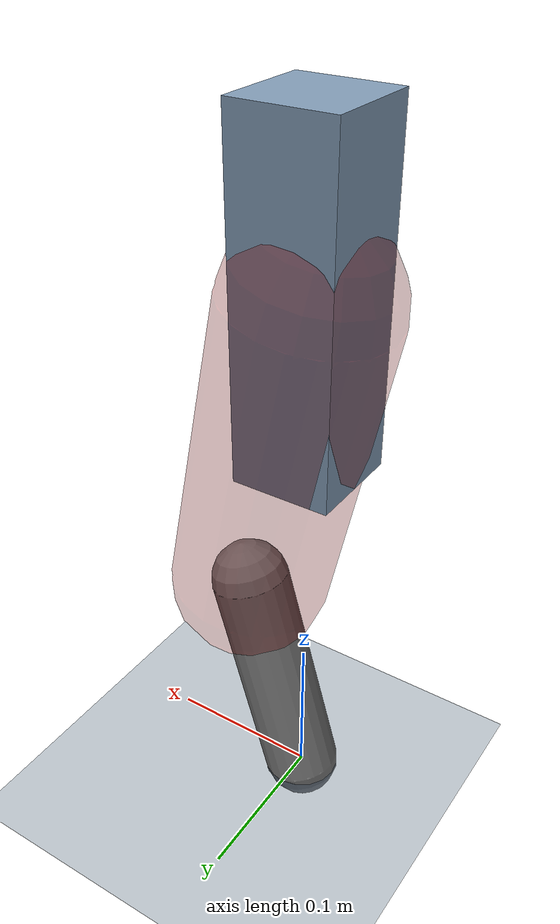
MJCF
<mujoco model="Hopper2D">
	<compiler inertiafromgeom="true" angle="radian" />
	<option timestep="0.001" integrator="implicit" cone="elliptic" solver="Newton" tolerance="1e-10" />

	<default>
		<geom contype="1" conaffinity="1" condim="3" friction="2 0.005 0.0001" solref="0.005 1" />
		<joint limited="true" damping="0.1" />
	</default>

	<asset>
		<texture name="skybox" type="skybox" builtin="gradient" rgb1=".4 .6 .8" rgb2="0 0 0" width="800" height="800" />
		<texture name="grid" type="2d" builtin="checker" rgb1=".1 .2 .3" rgb2=".2 .3 .4" width="300" height="300" mark="edge" markrgb=".2 .3 .4" />
		<material name="ground" texture="grid" texrepeat="1 1" texuniform="true" reflectance="0.1" />
		<material name="leg" rgba="0.5 0.6 0.7 1" />
	</asset>

	<worldbody>

		<geom name="floor" type="plane" size="5 5 0.25" material="ground" />

		<light directional="false" diffuse="0.8 0.8 0.8" specular="0.3 0.3 0.3" pos="0 0 2" dir="0 0 -1" />
		<light mode="targetbodycom" target="base" directional="false" diffuse="0.8 0.8 0.8" specular="0.3 0.3 0.3" pos="0 0 2" dir="0 0 -1" />

		<camera name="fixed" pos="0 -2 1" xyaxes="1 0 0 0 0 1" />
		<camera name="tracking" mode="trackcom" pos="0 -3 1" />

		<body name="root" pos="0 0 0.33968080567000636">
			<joint name="slide_x" type="slide" axis="1 0 0" range="-100 100" />
			<joint name="slide_z" type="slide" axis="0 0 1" range="0 10" />

			<body name="base" pos="0 0 0">
				<geom name="torso" type="box" size="0.03 0.03 0.1" mass="2.179" material="leg" />

				<body name="link1" pos="0 0 0" euler="0 1.3623812235131996 0">
					<joint type="hinge" axis="0 -1 0" pos="0 0 0" name="hinge1" limited="true" range="-3.14 3.14" stiffness="0" damping="0.1" />
					<geom name="thigh" type="capsule" fromto="0 0 0 0.19865564438801753 0 0" size="0.05" rgba="0.5 0 0 0.3" mass="0.7263391109700438" />

					<body name="link2" pos="0.19865564438801753 0 0" euler="0 0.4840572797694315 0">
						<joint type="hinge" axis="0 -1 0" pos="0 0 0" name="hinge2" limited="true" range="-3.14 3.14" stiffness="0" damping="0.1" />
						<geom name="shank" type="capsule" fromto="0 0 0 0.1510251612819888 0 0" size="0.025" mass="0.3586226451537899" />

					</body>
				</body>
			</body>
		</body>
	</worldbody>

	<actuator>
		<motor name="torque1" joint="hinge1" ctrlrange="-69.03308160101906 69.03308160101906" ctrllimited="true" gear="1" />
		<motor name="torque2" joint="hinge2" ctrlrange="-16.44371457177308 16.44371457177308" ctrllimited="true" gear="1" />
	</actuator>
</mujoco>
